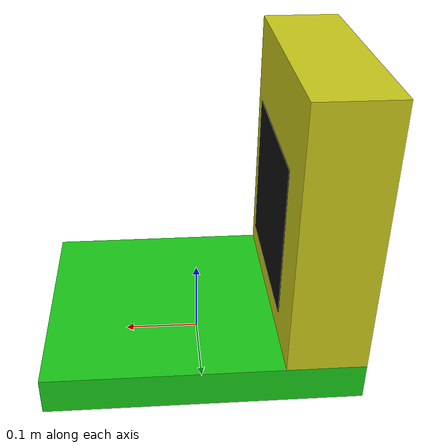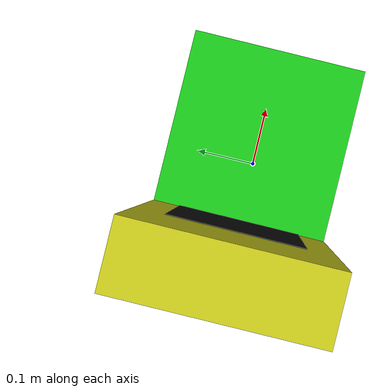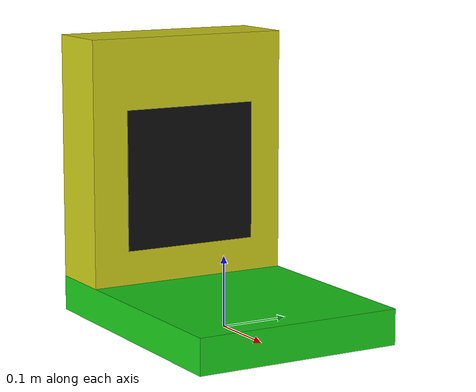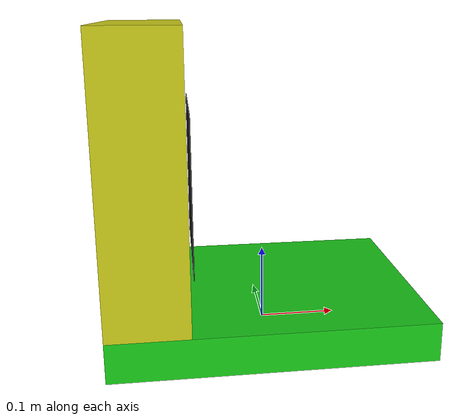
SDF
<?xml version="1.0"?>
<sdf version="1.9">
  <model name="aruco_dock">
    <static>true</static>
    <link name="link">

      <!-- Green floor pad -->
      <visual name="base">
        <pose>0 0 0.025 0 0 0</pose>
        <geometry><box><size>0.4 0.3 0.05</size></box></geometry>
        <material>
          <ambient>0.1 0.8 0.1 1</ambient>
          <diffuse>0.1 0.8 0.1 1</diffuse>
        </material>
      </visual>

      <!-- Yellow back wall (robot backs toward it) -->
      <collision name="col_wall">
        <pose>-0.15 0 0.225 0 0 0</pose>
        <geometry><box><size>0.1 0.3 0.35</size></box></geometry>
      </collision>
      <visual name="wall">
        <pose>-0.15 0 0.225 0 0 0</pose>
        <geometry><box><size>0.1 0.3 0.35</size></box></geometry>
        <material>
          <ambient>0.8 0.8 0.1 1</ambient>
          <diffuse>0.8 0.8 0.1 1</diffuse>
        </material>
      </visual>

      <visual name="aruco_panel">
        <pose>-0.095 0 0.20 0 1.5708 0</pose>
        <geometry><box><size>0.20 0.20 0.001</size></box></geometry>
        <!-- The legacy texture script is not portable to Harmonic. Keep the
             panel geometry; visual marker texture is a later camera phase. -->
        <material>
          <ambient>0.05 0.05 0.05 1</ambient>
          <diffuse>0.05 0.05 0.05 1</diffuse>
        </material>
      </visual>

    </link>
  </model>
</sdf>
